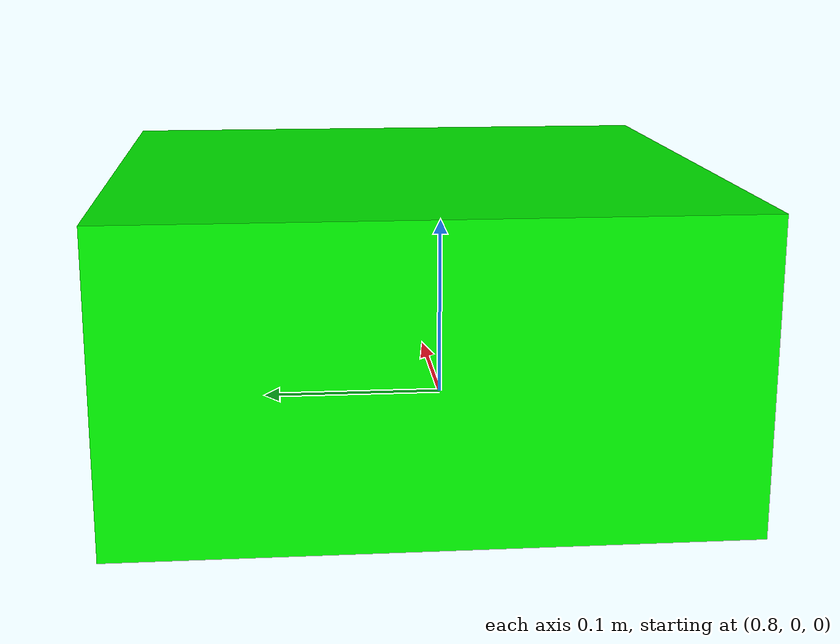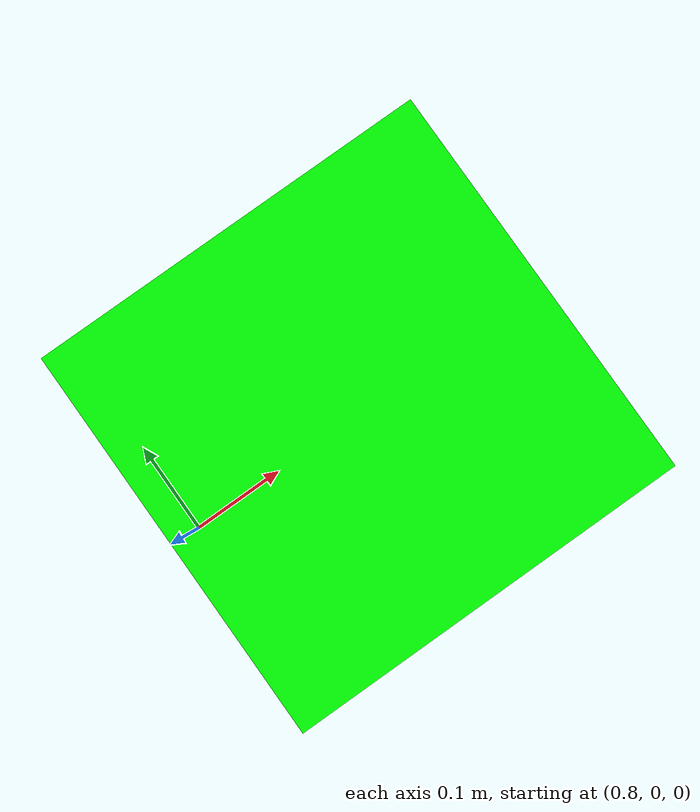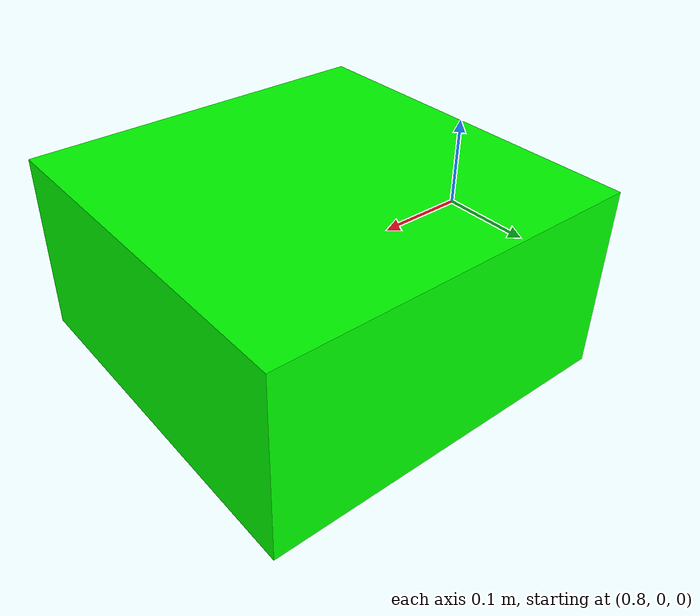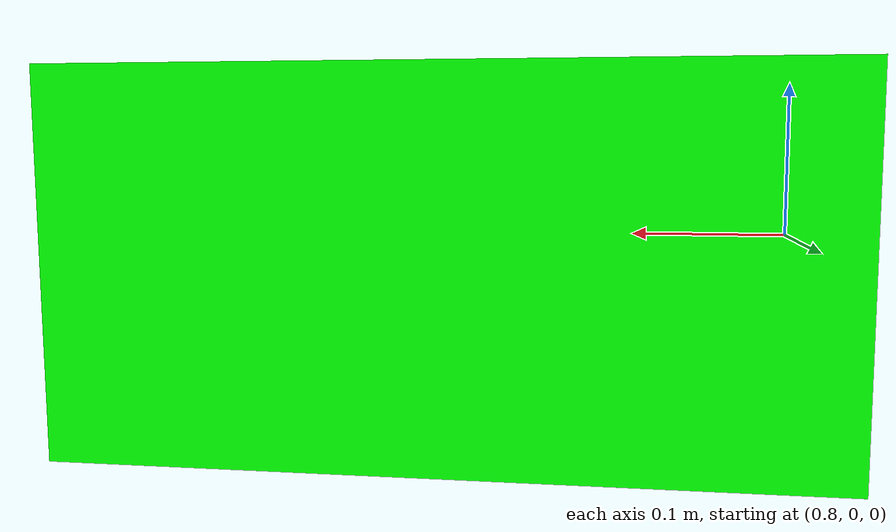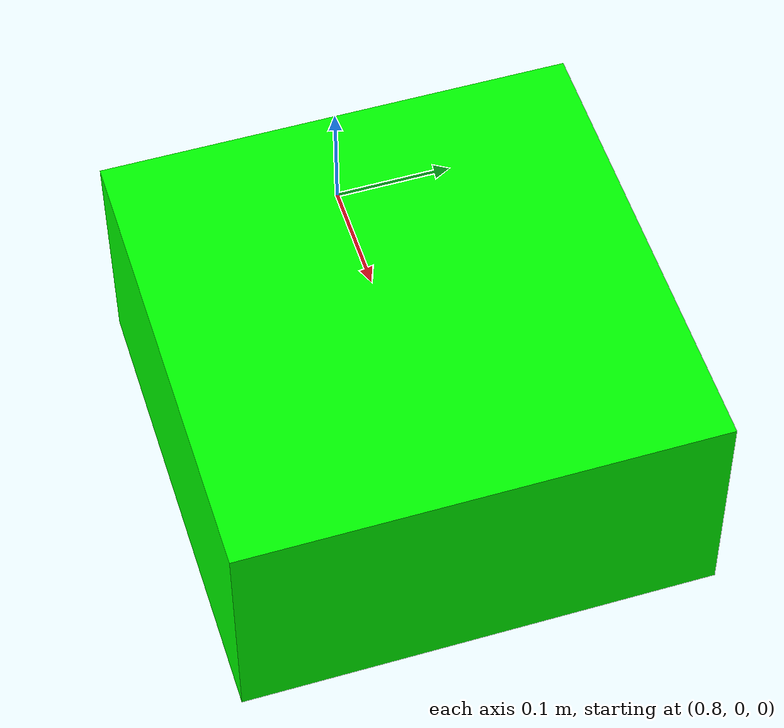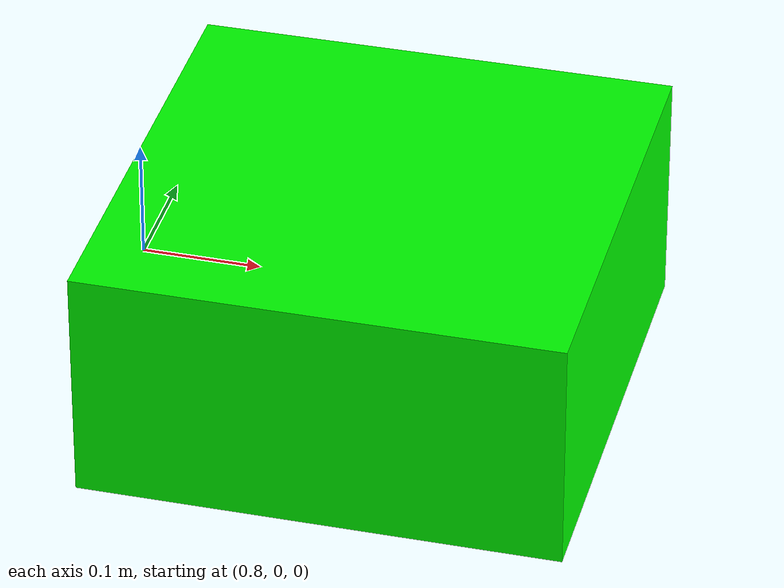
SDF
<?xml version="1.0" ?>
<sdf version="1.8">
  <model name="home_dock">
    <static>true</static>

    <!-- Dock frame origin = ideal docking pose -->
    <pose>1.0 0.0 0.0 0 0 0</pose>

    <link name="dock_link">
      <collision name="collision">
        <geometry>
          <box>
            <size>0.4 0.4 0.2</size>
          </box>
        </geometry>
      </collision>

      <visual name="visual">
        <geometry>
          <box>
            <size>0.4 0.4 0.2</size>
          </box>
        </geometry>
        <material>
          <ambient>0 1 0 1</ambient>
          <diffuse>0 1 0 1</diffuse>
        </material>
      </visual>
    </link>
  </model>
</sdf>
